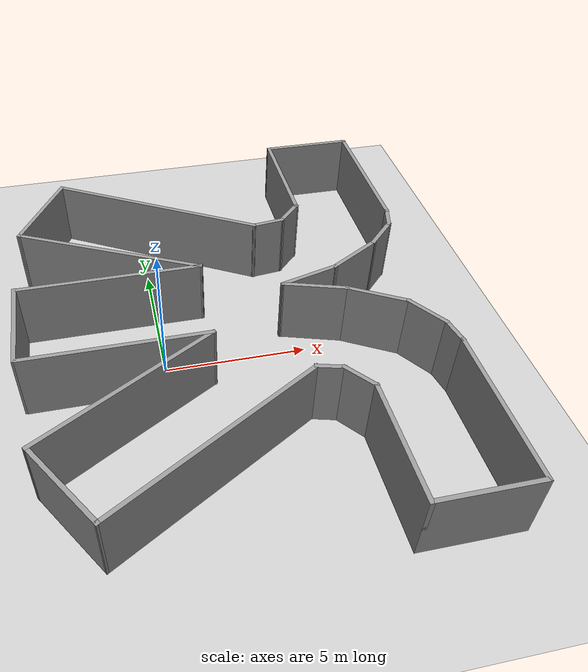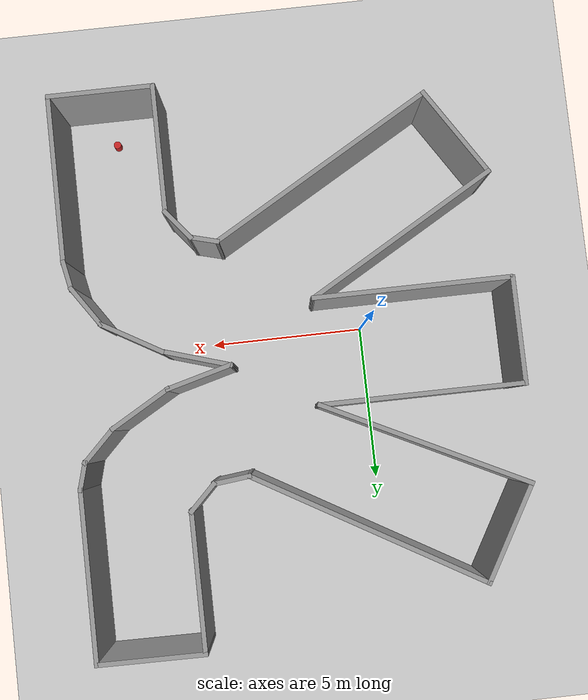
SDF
<sdf version="1.5">
 <world name="default">
  <model name="ground_plane">
   <static>1</static>
   <link name="link">
    <collision name="collision">
     <geometry><plane><normal>0 0 1</normal><size>100 100</size></plane></geometry>
     <surface><friction><ode><mu>100</mu><mu2>50</mu2></ode></friction></surface>
    </collision>
    <visual name="visual">
     <cast_shadows>0</cast_shadows>
     <geometry><plane><normal>0 0 1</normal><size>100 100</size></plane></geometry>
     <material>
      <script><uri>file://media/materials/scripts/gazebo.material</uri><name>Gazebo/Grey</name></script>
     </material>
    </visual>
   </link>
  </model>
  <light name="sun" type="directional">
   <pose>0 0 10 0 -0 0</pose>
   <diffuse>0.8 0.8 0.8 1</diffuse>
   <specular>0.2 0.2 0.2 1</specular>
   <attenuation>
    <range>1000</range>
    <constant>0.9</constant>
    <linear>0.01</linear>
    <quadratic>0.001</quadratic>
   </attenuation>
   <direction>-0.5 0.1 -0.9</direction>
  </light>
  <plugin name="ros_interface_plugin" filename="librotors_gazebo_ros_interface_plugin.so"/>
  <plugin name="ros_rl_interface_plugin" filename="librl_gazebo_interface_plugin.so"/>
  <spherical_coordinates>
   <surface_model>EARTH_WGS84</surface_model>
   <latitude_deg>47.3667</latitude_deg>
   <longitude_deg>8.55</longitude_deg>
   <elevation>500</elevation>
   <heading_deg>0</heading_deg>
  </spherical_coordinates>
  <physics name="default_physics" default="0" type="ode">
   <ode>
    <solver>
     <type>quick</type>
     <iters>1000</iters>
     <sor>1.3</sor>
     <use_dynamic_moi_rescaling>0</use_dynamic_moi_rescaling>
    </solver>
    <constraints>
     <cfm>0</cfm>
     <erp>0.2</erp>
     <contact_max_correcting_vel>100</contact_max_correcting_vel>
     <contact_surface_layer>0.001</contact_surface_layer>
    </constraints>
   </ode>
   <max_step_size>0.01</max_step_size>
   <real_time_factor>1</real_time_factor>
   <real_time_update_rate>100</real_time_update_rate>
   <gravity>0 0 -9.8</gravity>
   <magnetic_field>6e-06 2.3e-05 -4.2e-05</magnetic_field>
  </physics>
  <model name="cylinder">
   <link name="link">
    <pose>0 0 0.15 0 -0 0</pose>
    <inertial>
     <mass>1</mass>
     <inertia><ixx>0.145833</ixx><ixy>0</ixy><ixz>0</ixz><iyy>0.145833</iyy><iyz>0</iyz><izz>0.125</izz></inertia>
    </inertial>
    <visual name="visual">
     <geometry><cylinder><radius>0.125</radius><length>0.3</length></cylinder></geometry>
     <material>
      <script><name>Gazebo/Red</name><uri>file://media/materials/scripts/gazebo.material</uri></script>
      <ambient>1 0 0 1</ambient>
      <diffuse>1 0 0 1</diffuse>
      <specular>0.01 0 0 1</specular>
      <emissive>0 0 0 1</emissive>
      <shader type="vertex"><normal_map>__default__</normal_map></shader>
     </material>
    </visual>
   </link>
   <static>1</static>
   <pose>7.57523 -7.21642 0 0 -0 0</pose>
  </model>
  <scene><ambient>0.4 0.4 0.4 1</ambient><background>0.7 0.7 0.7 1</background><shadows>1</shadows></scene>
  <model name="rl_navigation_maze_3">
   <pose>2.32625 0.708179 0 0 -0 0</pose>
   <link name="Wall_1">
    <collision name="Wall_1_Collision">
     <geometry><box><size>1 0.15 2.5</size></box></geometry>
     <pose>0 0 1.25 0 -0 0</pose>
    </collision>
    <visual name="Wall_1_Visual">
     <pose>0 0 1.25 0 -0 0</pose>
     <geometry><box><size>1 0.15 2.5</size></box></geometry>
     <material>
      <script><uri>file://media/materials/scripts/gazebo.material</uri><name>Gazebo/Grey</name></script>
      <ambient>1 1 1 1</ambient>
     </material>
    </visual>
    <pose>2.45715 -3.84275 0 0 0 -0.261799</pose>
   </link>
   <link name="Wall_111">
    <collision name="Wall_111_Collision">
     <geometry><box><size>7 0.15 2.5</size></box></geometry>
     <pose>0 0 1.25 0 -0 0</pose>
    </collision>
    <visual name="Wall_111_Visual">
     <pose>0 0 1.25 0 -0 0</pose>
     <geometry><box><size>7 0.15 2.5</size></box></geometry>
     <material>
      <script><uri>file://media/materials/scripts/gazebo.material</uri><name>Gazebo/Grey</name></script>
      <ambient>1 1 1 1</ambient>
     </material>
    </visual>
    <pose>-3.74998 -3.33502 0 0 0 -2.61799</pose>
   </link>
   <link name="Wall_113">
    <collision name="Wall_113_Collision">
     <geometry><box><size>3.39604 0.15 2.5</size></box></geometry>
     <pose>0 0 1.25 0 -0 0</pose>
    </collision>
    <visual name="Wall_113_Visual">
     <pose>0 0 1.25 0 -0 0</pose>
     <geometry><box><size>3.39604 0.15 2.5</size></box></geometry>
     <material>
      <script><uri>file://media/materials/scripts/gazebo.material</uri><name>Gazebo/Grey</name></script>
      <ambient>1 1 1 1</ambient>
     </material>
    </visual>
    <pose>-5.84215 -6.41514 0 0 -0 2.13943</pose>
   </link>
   <link name="Wall_120">
    <collision name="Wall_120_Collision">
     <geometry><box><size>3.49969 0.15 2.5</size></box></geometry>
     <pose>0 0 1.25 0 -0 0</pose>
    </collision>
    <visual name="Wall_120_Visual">
     <pose>0 0 1.25 0 -0 0</pose>
     <geometry><box><size>3.49969 0.15 2.5</size></box></geometry>
     <material>
      <script><uri>file://media/materials/scripts/gazebo.material</uri><name>Gazebo/Grey</name></script>
      <ambient>1 1 1 1</ambient>
     </material>
    </visual>
    <pose>5.37671 8.92584 0 0 0 -0.009606</pose>
   </link>
   <link name="Wall_18">
    <collision name="Wall_18_Collision">
     <geometry><box><size>2.34049 0.15 2.5</size></box></geometry>
     <pose>0 0 1.25 0 -0 0</pose>
    </collision>
    <visual name="Wall_18_Visual">
     <pose>0 0 1.25 0 -0 0</pose>
     <geometry><box><size>2.34049 0.15 2.5</size></box></geometry>
     <material>
      <script><uri>file://media/materials/scripts/gazebo.material</uri><name>Gazebo/Grey</name></script>
      <ambient>1 1 1 1</ambient>
     </material>
    </visual>
    <pose>3.07568 -0.134482 0 0 0 -0.301349</pose>
   </link>
   <link name="Wall_19">
    <collision name="Wall_19_Collision">
     <geometry><box><size>2.25 0.15 2.5</size></box></geometry>
     <pose>0 0 1.25 0 -0 0</pose>
    </collision>
    <visual name="Wall_19_Visual">
     <pose>0 0 1.25 0 -0 0</pose>
     <geometry><box><size>2.25 0.15 2.5</size></box></geometry>
     <material>
      <script><uri>file://media/materials/scripts/gazebo.material</uri><name>Gazebo/Grey</name></script>
      <ambient>1 1 1 1</ambient>
     </material>
    </visual>
    <pose>5.03089 -0.98456 0 0 0 -0.523599</pose>
   </link>
   <link name="Wall_2">
    <collision name="Wall_2_Collision">
     <geometry><box><size>1.29036 0.15 2.5</size></box></geometry>
     <pose>0 0 1.25 0 -0 0</pose>
    </collision>
    <visual name="Wall_2_Visual">
     <pose>0 0 1.25 0 -0 0</pose>
     <geometry><box><size>1.29036 0.15 2.5</size></box></geometry>
     <material>
      <script><uri>file://media/materials/scripts/gazebo.material</uri><name>Gazebo/Grey</name></script>
      <ambient>1 1 1 1</ambient>
     </material>
    </visual>
    <pose>3.22422 -4.3977 0 0 0 -0.895233</pose>
   </link>
   <link name="Wall_23">
    <collision name="Wall_23_Collision">
     <geometry><box><size>1.61496 0.15 2.5</size></box></geometry>
     <pose>0 0 1.25 0 -0 0</pose>
    </collision>
    <visual name="Wall_23_Visual">
     <pose>0 0 1.25 0 -0 0</pose>
     <geometry><box><size>1.61496 0.15 2.5</size></box></geometry>
     <material>
      <script><uri>file://media/materials/scripts/gazebo.material</uri><name>Gazebo/Grey</name></script>
      <ambient>1 1 1 1</ambient>
     </material>
    </visual>
    <pose>6.34922 -2.11722 0 0 0 -0.978365</pose>
   </link>
   <link name="Wall_30">
    <collision name="Wall_30_Collision">
     <geometry><box><size>3.5 0.15 2.5</size></box></geometry>
     <pose>0 0 1.25 0 -0 0</pose>
    </collision>
    <visual name="Wall_30_Visual">
     <pose>0 0 1.25 0 -0 0</pose>
     <geometry><box><size>3.5 0.15 2.5</size></box></geometry>
     <material>
      <script><uri>file://media/materials/scripts/gazebo.material</uri><name>Gazebo/Grey</name></script>
      <ambient>1 1 1 1</ambient>
     </material>
    </visual>
    <pose>5.25578 -8.94264 0 0 -0 0</pose>
   </link>
   <link name="Wall_31">
    <collision name="Wall_31_Collision">
     <geometry><box><size>5.5 0.15 2.5</size></box></geometry>
     <pose>0 0 1.25 0 -0 0</pose>
    </collision>
    <visual name="Wall_31_Visual">
     <pose>0 0 1.25 0 -0 0</pose>
     <geometry><box><size>5.5 0.15 2.5</size></box></geometry>
     <material>
      <script><uri>file://media/materials/scripts/gazebo.material</uri><name>Gazebo/Grey</name></script>
      <ambient>1 1 1 1</ambient>
     </material>
    </visual>
    <pose>6.93078 -6.26764 0 0 -0 1.5708</pose>
   </link>
   <link name="Wall_33">
    <collision name="Wall_33_Collision">
     <geometry><box><size>1.03476 0.15 2.5</size></box></geometry>
     <pose>0 0 1.25 0 -0 0</pose>
    </collision>
    <visual name="Wall_33_Visual">
     <pose>0 0 1.25 0 -0 0</pose>
     <geometry><box><size>1.03476 0.15 2.5</size></box></geometry>
     <material>
      <script><uri>file://media/materials/scripts/gazebo.material</uri><name>Gazebo/Grey</name></script>
      <ambient>1 1 1 1</ambient>
     </material>
    </visual>
    <pose>6.8445 -3.15876 0 0 0 -1.37451</pose>
   </link>
   <link name="Wall_4">
    <collision name="Wall_4_Collision">
     <geometry><box><size>4.25 0.15 2.5</size></box></geometry>
     <pose>0 0 1.25 0 -0 0</pose>
    </collision>
    <visual name="Wall_4_Visual">
     <pose>0 0 1.25 0 -0 0</pose>
     <geometry><box><size>4.25 0.15 2.5</size></box></geometry>
     <material>
      <script><uri>file://media/materials/scripts/gazebo.material</uri><name>Gazebo/Grey</name></script>
      <ambient>1 1 1 1</ambient>
     </material>
    </visual>
    <pose>3.58078 -6.89264 0 0 0 -1.5708</pose>
   </link>
   <link name="Wall_42">
    <collision name="Wall_42_Collision">
     <geometry><box><size>2.25 0.15 2.5</size></box></geometry>
     <pose>0 0 1.25 0 -0 0</pose>
    </collision>
    <visual name="Wall_42_Visual">
     <pose>0 0 1.25 0 -0 0</pose>
     <geometry><box><size>2.25 0.15 2.5</size></box></geometry>
     <material>
      <script><uri>file://media/materials/scripts/gazebo.material</uri><name>Gazebo/Grey</name></script>
      <ambient>1 1 1 1</ambient>
     </material>
    </visual>
    <pose>3.04401 0.462356 0 0 -0 0.261799</pose>
   </link>
   <link name="Wall_43">
    <collision name="Wall_43_Collision">
     <geometry><box><size>2.25 0.15 2.5</size></box></geometry>
     <pose>0 0 1.25 0 -0 0</pose>
    </collision>
    <visual name="Wall_43_Visual">
     <pose>0 0 1.25 0 -0 0</pose>
     <geometry><box><size>2.25 0.15 2.5</size></box></geometry>
     <material>
      <script><uri>file://media/materials/scripts/gazebo.material</uri><name>Gazebo/Grey</name></script>
      <ambient>1 1 1 1</ambient>
     </material>
    </visual>
    <pose>4.96756 1.25912 0 0 -0 0.523599</pose>
   </link>
   <link name="Wall_44">
    <collision name="Wall_44_Collision">
     <geometry><box><size>1.5 0.15 2.5</size></box></geometry>
     <pose>0 0 1.25 0 -0 0</pose>
    </collision>
    <visual name="Wall_44_Visual">
     <pose>0 0 1.25 0 -0 0</pose>
     <geometry><box><size>1.5 0.15 2.5</size></box></geometry>
     <material>
      <script><uri>file://media/materials/scripts/gazebo.material</uri><name>Gazebo/Grey</name></script>
      <ambient>1 1 1 1</ambient>
     </material>
    </visual>
    <pose>6.35418 2.26141 0 0 -0 0.785398</pose>
   </link>
   <link name="Wall_47">
    <collision name="Wall_47_Collision">
     <geometry><box><size>4.5 0.15 2.5</size></box></geometry>
     <pose>0 0 1.25 0 -0 0</pose>
    </collision>
    <visual name="Wall_47_Visual">
     <pose>0 0 1.25 0 -0 0</pose>
     <geometry><box><size>4.5 0.15 2.5</size></box></geometry>
     <material>
      <script><uri>file://media/materials/scripts/gazebo.material</uri><name>Gazebo/Grey</name></script>
      <ambient>1 1 1 1</ambient>
     </material>
    </visual>
    <pose>3.70194 6.76692 0 0 0 -1.5708</pose>
   </link>
   <link name="Wall_48">
    <collision name="Wall_48_Collision">
     <geometry><box><size>1.25 0.15 2.5</size></box></geometry>
     <pose>0 0 1.25 0 -0 0</pose>
    </collision>
    <visual name="Wall_48_Visual">
     <pose>0 0 1.25 0 -0 0</pose>
     <geometry><box><size>1.25 0.15 2.5</size></box></geometry>
     <material>
      <script><uri>file://media/materials/scripts/gazebo.material</uri><name>Gazebo/Grey</name></script>
      <ambient>1 1 1 1</ambient>
     </material>
    </visual>
    <pose>3.31303 4.20302 0 0 0 -2.35619</pose>
   </link>
   <link name="Wall_49">
    <collision name="Wall_49_Collision">
     <geometry><box><size>1.27094 0.15 2.5</size></box></geometry>
     <pose>0 0 1.25 0 -0 0</pose>
    </collision>
    <visual name="Wall_49_Visual">
     <pose>0 0 1.25 0 -0 0</pose>
     <geometry><box><size>1.27094 0.15 2.5</size></box></geometry>
     <material>
      <script><uri>file://media/materials/scripts/gazebo.material</uri><name>Gazebo/Grey</name></script>
      <ambient>1 1 1 1</ambient>
     </material>
    </visual>
    <pose>2.36712 3.75185 0 0 0 -3.03028</pose>
   </link>
   <link name="Wall_50">
    <collision name="Wall_50_Collision">
     <geometry><box><size>8.25 0.15 2.5</size></box></geometry>
     <pose>0 0 1.25 0 -0 0</pose>
    </collision>
    <visual name="Wall_50_Visual">
     <pose>0 0 1.25 0 -0 0</pose>
     <geometry><box><size>8.25 0.15 2.5</size></box></geometry>
     <material>
      <script><uri>file://media/materials/scripts/gazebo.material</uri><name>Gazebo/Grey</name></script>
      <ambient>1 1 1 1</ambient>
     </material>
    </visual>
    <pose>-1.69728 5.71458 0 0 -0 2.61799</pose>
   </link>
   <link name="Wall_60">
    <collision name="Wall_60_Collision">
     <geometry><box><size>1 0.15 2.5</size></box></geometry>
     <pose>0 0 1.25 0 -0 0</pose>
    </collision>
    <visual name="Wall_60_Visual">
     <pose>0 0 1.25 0 -0 0</pose>
     <geometry><box><size>1 0.15 2.5</size></box></geometry>
     <material>
      <script><uri>file://media/materials/scripts/gazebo.material</uri><name>Gazebo/Grey</name></script>
      <ambient>1 1 1 1</ambient>
     </material>
    </visual>
    <pose>6.94148 3.14923 0 0 -0 1.309</pose>
   </link>
   <link name="Wall_61">
    <collision name="Wall_61_Collision">
     <geometry><box><size>5.5 0.15 2.5</size></box></geometry>
     <pose>0 0 1.25 0 -0 0</pose>
    </collision>
    <visual name="Wall_61_Visual">
     <pose>0 0 1.25 0 -0 0</pose>
     <geometry><box><size>5.5 0.15 2.5</size></box></geometry>
     <material>
      <script><uri>file://media/materials/scripts/gazebo.material</uri><name>Gazebo/Grey</name></script>
      <ambient>1 1 1 1</ambient>
     </material>
    </visual>
    <pose>7.05148 6.23475 0 0 -0 1.5708</pose>
   </link>
   <link name="Wall_75">
    <collision name="Wall_75_Collision">
     <geometry><box><size>6.5 0.15 2.5</size></box></geometry>
     <pose>0 0 1.25 0 -0 0</pose>
    </collision>
    <visual name="Wall_75_Visual">
     <pose>0 0 1.25 0 -0 0</pose>
     <geometry><box><size>6.5 0.15 2.5</size></box></geometry>
     <material>
      <script><uri>file://media/materials/scripts/gazebo.material</uri><name>Gazebo/Grey</name></script>
      <ambient>1 1 1 1</ambient>
     </material>
    </visual>
    <pose>-3.78306 1.73575 0 0 -0 3.14159</pose>
   </link>
   <link name="Wall_77">
    <collision name="Wall_77_Collision">
     <geometry><box><size>6.36122 0.15 2.5</size></box></geometry>
     <pose>0 0 1.25 0 -0 0</pose>
    </collision>
    <visual name="Wall_77_Visual">
     <pose>0 0 1.25 0 -0 0</pose>
     <geometry><box><size>6.36122 0.15 2.5</size></box></geometry>
     <material>
      <script><uri>file://media/materials/scripts/gazebo.material</uri><name>Gazebo/Grey</name></script>
      <ambient>1 1 1 1</ambient>
     </material>
    </visual>
    <pose>-3.88945 -1.62252 0 0 -0 3.14159</pose>
   </link>
   <link name="Wall_85">
    <collision name="Wall_85_Collision">
     <geometry><box><size>3.5 0.15 2.5</size></box></geometry>
     <pose>0 0 1.25 0 -0 0</pose>
    </collision>
    <visual name="Wall_85_Visual">
     <pose>0 0 1.25 0 -0 0</pose>
     <geometry><box><size>3.5 0.15 2.5</size></box></geometry>
     <material>
      <script><uri>file://media/materials/scripts/gazebo.material</uri><name>Gazebo/Grey</name></script>
      <ambient>1 1 1 1</ambient>
     </material>
    </visual>
    <pose>-7.06833 0.074706 0 0 -0 1.5708</pose>
   </link>
   <link name="Wall_89">
    <collision name="Wall_89_Collision">
     <geometry><box><size>3.5 0.15 2.5</size></box></geometry>
     <pose>0 0 1.25 0 -0 0</pose>
    </collision>
    <visual name="Wall_89_Visual">
     <pose>0 0 1.25 0 -0 0</pose>
     <geometry><box><size>3.5 0.15 2.5</size></box></geometry>
     <material>
      <script><uri>file://media/materials/scripts/gazebo.material</uri><name>Gazebo/Grey</name></script>
      <ambient>1 1 1 1</ambient>
     </material>
    </visual>
    <pose>-6.04218 6.28899 0 0 0 -2.0944</pose>
   </link>
   <link name="Wall_91">
    <collision name="Wall_91_Collision">
     <geometry><box><size>7.14712 0.15 2.5</size></box></geometry>
     <pose>0 0 1.25 0 -0 0</pose>
    </collision>
    <visual name="Wall_91_Visual">
     <pose>0 0 1.25 0 -0 0</pose>
     <geometry><box><size>7.14712 0.15 2.5</size></box></geometry>
     <material>
      <script><uri>file://media/materials/scripts/gazebo.material</uri><name>Gazebo/Grey</name></script>
      <ambient>1 1 1 1</ambient>
     </material>
    </visual>
    <pose>-3.74387 3.28708 0 0 -0 2.68219</pose>
   </link>
   <link name="Wall_96">
    <collision name="Wall_96_Collision">
     <geometry><box><size>8.25 0.15 2.5</size></box></geometry>
     <pose>0 0 1.25 0 -0 0</pose>
    </collision>
    <visual name="Wall_96_Visual">
     <pose>0 0 1.25 0 -0 0</pose>
     <geometry><box><size>8.25 0.15 2.5</size></box></geometry>
     <material>
      <script><uri>file://media/materials/scripts/gazebo.material</uri><name>Gazebo/Grey</name></script>
      <ambient>1 1 1 1</ambient>
     </material>
    </visual>
    <pose>-1.46077 -5.75776 0 0 0 -2.61799</pose>
   </link>
   <static>1</static>
  </model>
 </world>
</sdf>
